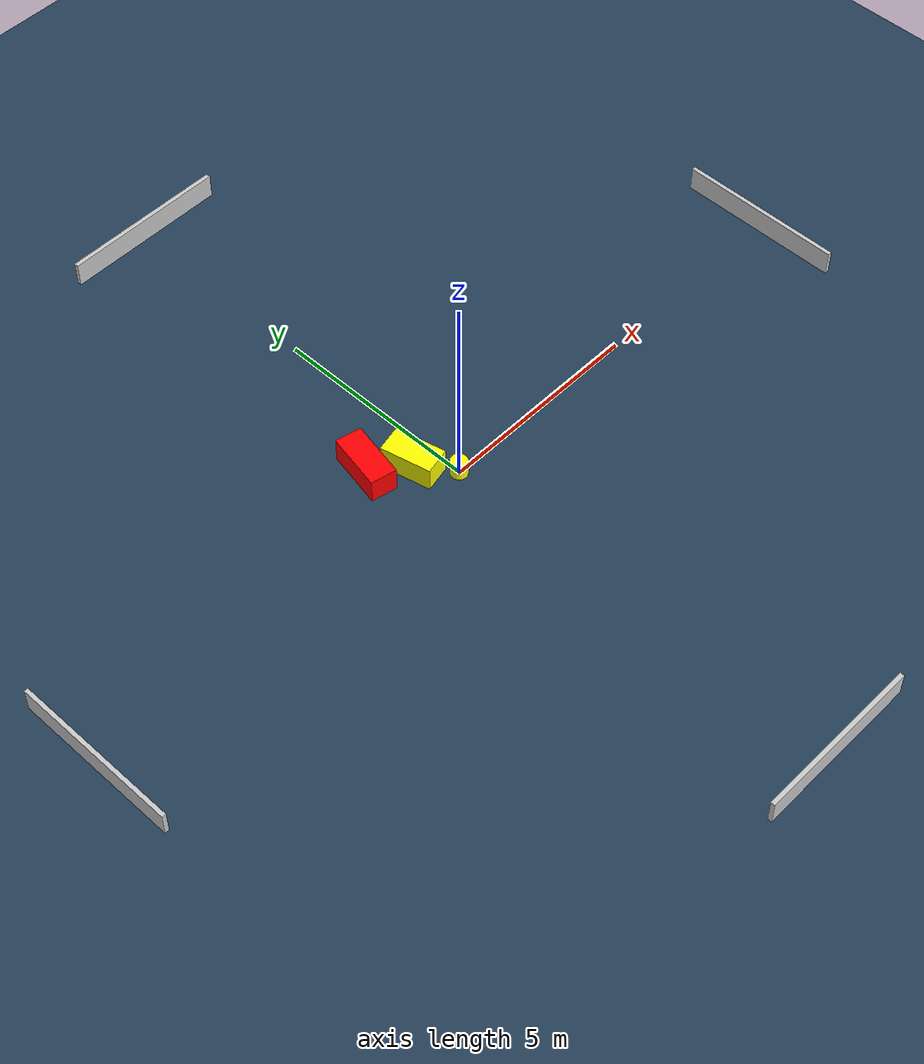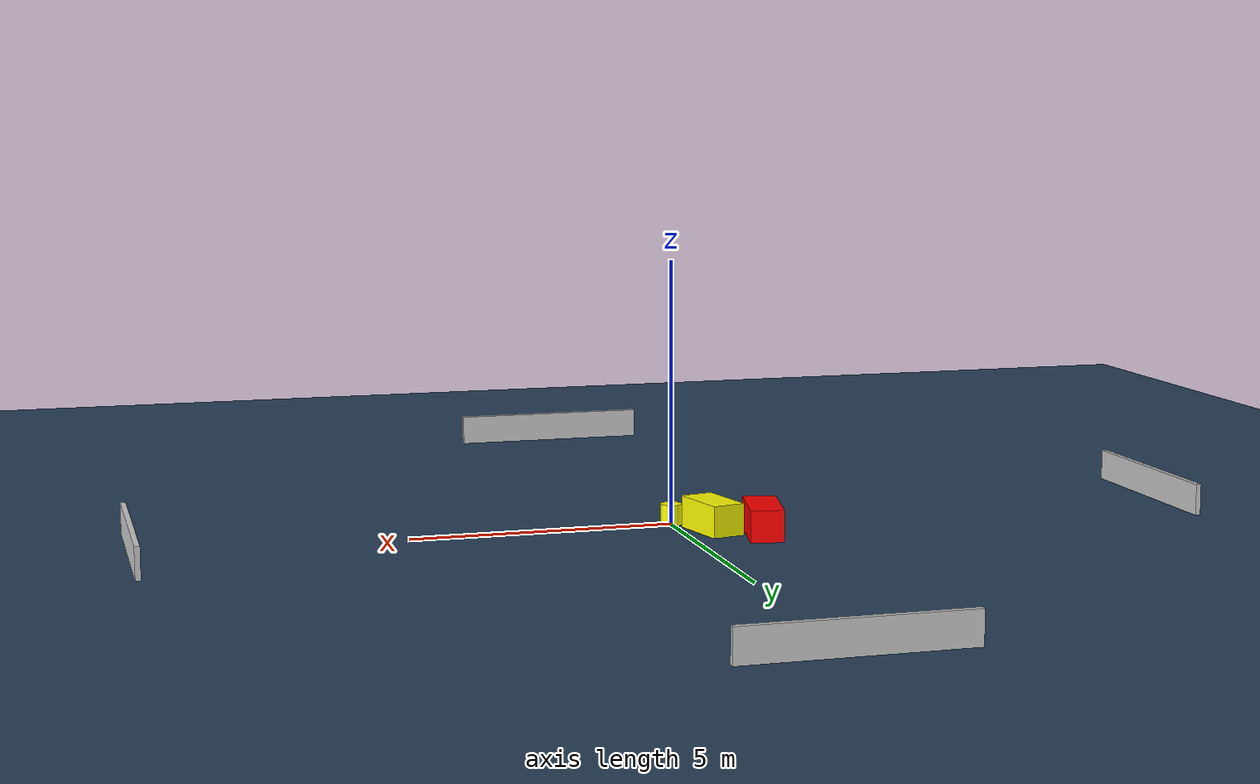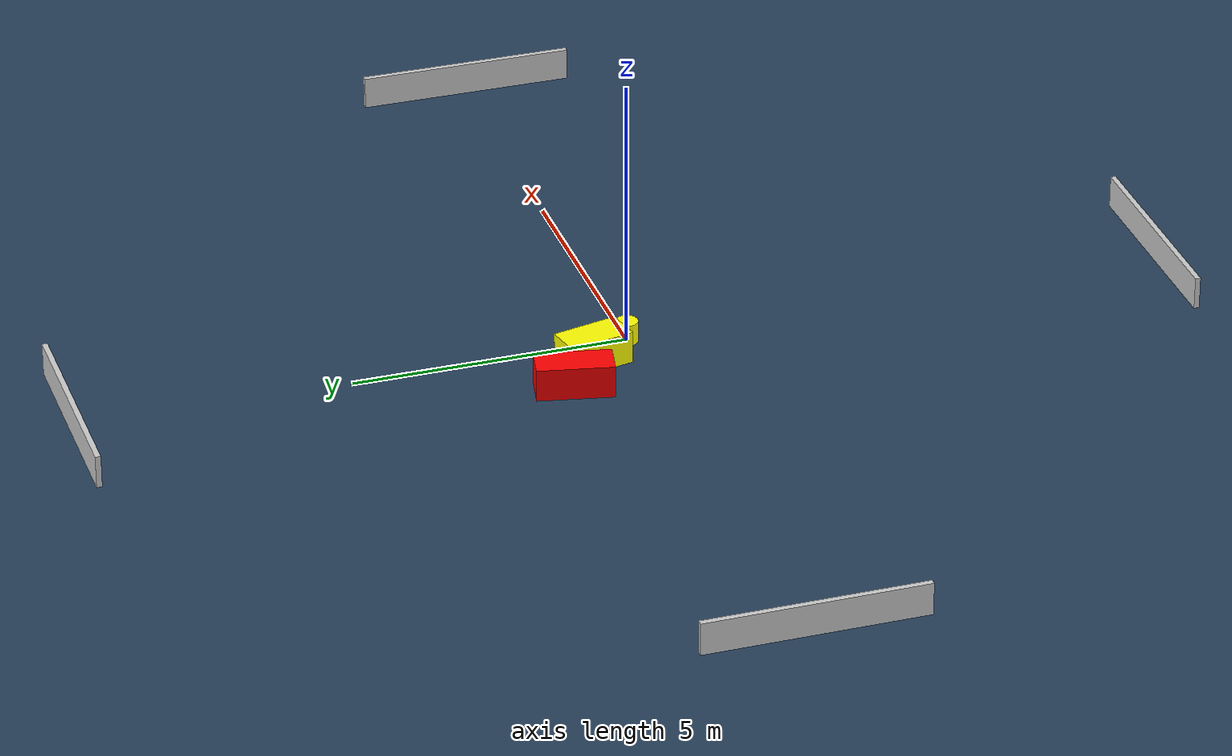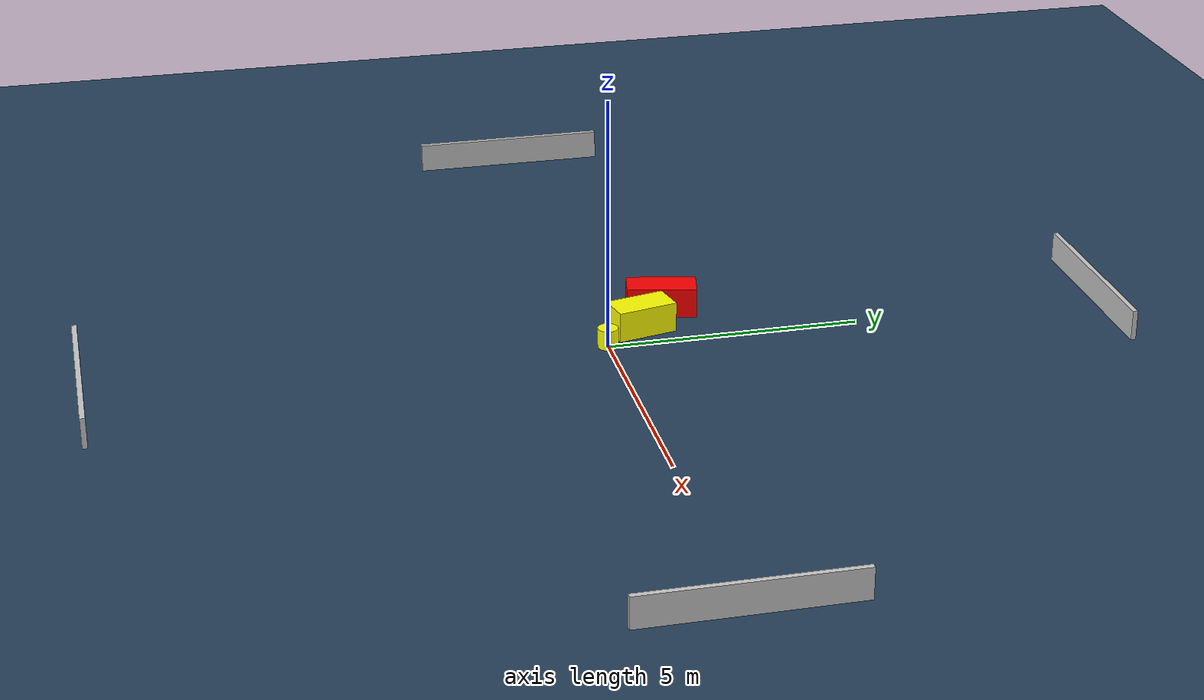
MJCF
<?xml version="1.0" ?>
<mujoco model="generated_environment">
  <option timestep="0.01" integrator="RK4" cone="elliptic"/>
  <default>
    <geom density="1"/>
  </default>
  <asset>
    <texture builtin="gradient" height="3072" name="skybox" rgb1="0.3 0.5 0.7" rgb2="0 0 0" type="skybox" width="512"/>
    <texture builtin="checker" height="300" name="groundplane" rgb1="0.2 0.3 0.4" rgb2="0.1 0.2 0.3" type="2d" width="300"/>
    <material name="groundplane" reflectance="0.2" texrepeat="5 5" texture="groundplane"/>
  </asset>
  <worldbody>
    <light dir="0 0 -1" directional="true" pos="0 0 1.5"/>
    <geom condim="3" friction="0.5 0.005 0.001" material="groundplane" name="floor" pos="0 0 0" size="0 0 0.05" type="plane"/>
    <body name="walls">
      <geom name="wall_1" condim="4" pos="-10.0 0.0 0.3" rgba="0.800000011920929 0.800000011920929 0.800000011920929 1.0" size="0.05 2.0 0.3" type="box"/>
      <geom name="wall_2" condim="4" pos="10.0 0.0 0.3" rgba="0.800000011920929 0.800000011920929 0.800000011920929 1.0" size="0.05 2.0 0.3" type="box"/>
      <geom name="wall_3" condim="4" pos="0.0 -10.0 0.3" rgba="0.800000011920929 0.800000011920929 0.800000011920929 1.0" size="2.0 0.05 0.3" type="box"/>
      <geom name="wall_4" condim="4" pos="0.0 10.0 0.3" rgba="0.800000011920929 0.800000011920929 0.800000011920929 1.0" size="2.0 0.05 0.3" type="box"/>
    </body>
    <body name="robot">
      <joint name="joint_x" type="slide" pos="0 0 0" axis="1 0 0"/>
      <joint name="joint_y" type="slide" pos="0 0 0" axis="0 1 0"/>
      <geom name="robot" type="cylinder" pos="0.0 0.0 0.2" size="0.2 0.2 0.0" mass="5.0" friction="1.0 0.005 0.0001" condim="4" rgba="1.0 1.0 0.0 1.0"/>
    </body>
    <body name="obstacle_1_movable">
      <geom name="obstacle_1_movable" condim="4" pos="-0.5709691307445806 0.7987986894971774 0.3" euler="0 0 192.7341315097149" friction="0.0 0.005 0.001" rgba="1.0 1.0 0.0 1.0" size="0.3206967102673411 0.6075311248495312 0.3" type="box" mass="0.1"/>
      <joint type="free"/>
    </body>
    <body name="obstacle_2_static">
      <geom name="obstacle_2_static" condim="4" pos="-1.3636331211253854 1.4005769194481688 0.3" euler="0 0 168.1969556992862" friction="0.0 0.005 0.001" rgba="1.0 0.0 0.0 1.0" size="0.3132504670749724 0.6901946121669318 0.3" type="box"/>
    </body>
  </worldbody>
  <actuator>
    <motor name="actuator_x" joint="joint_x" gear="1" ctrlrange="-1 1"/>
    <motor name="actuator_y" joint="joint_y" gear="1" ctrlrange="-1 1"/>
  </actuator>
</mujoco>
